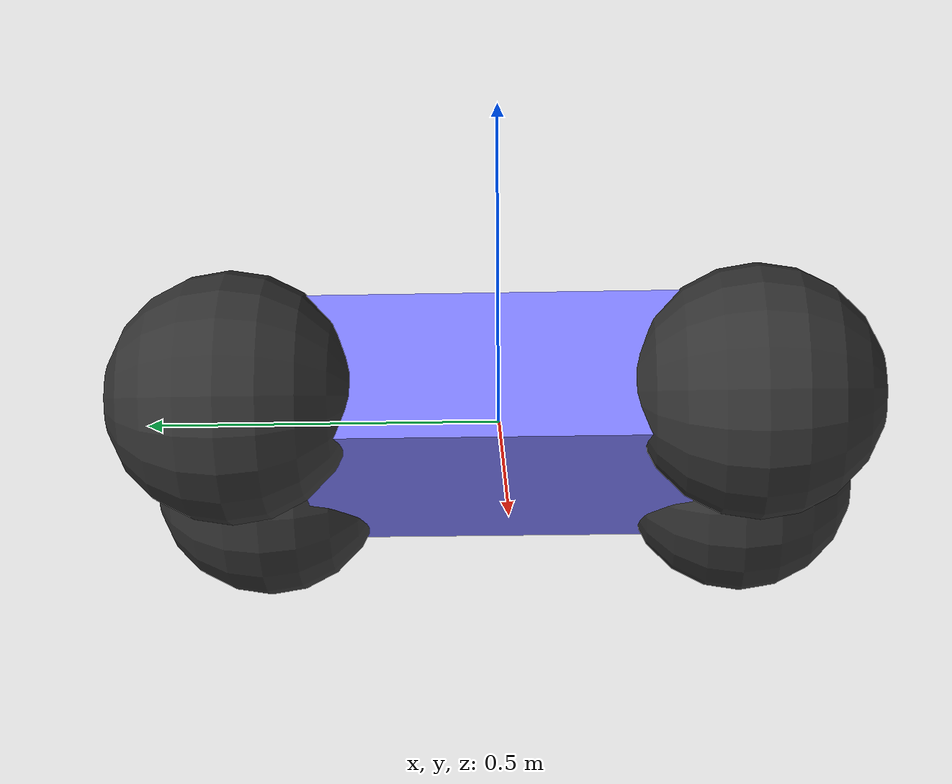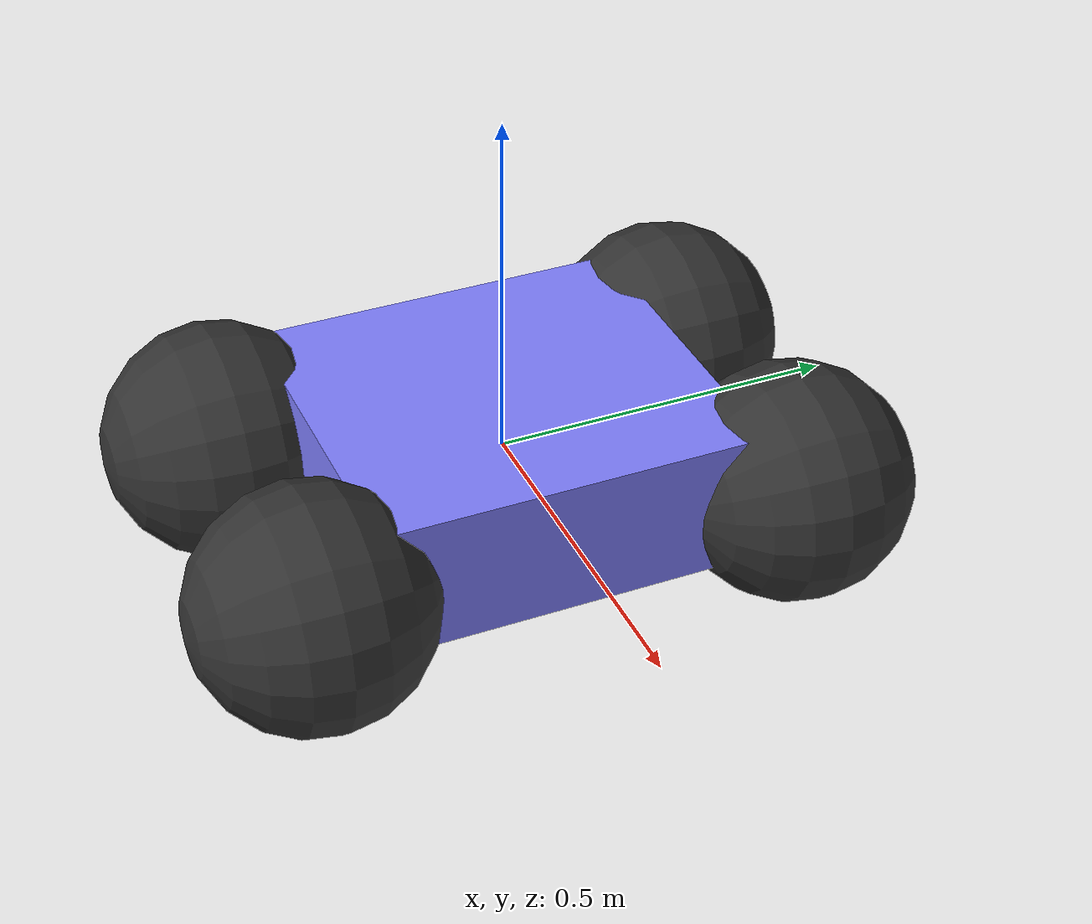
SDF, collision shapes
<?xml version="1.0" ?>
<sdf version="1.8">

    <model name='vehicle_blue' canonical_link='chassis'>
      <pose>0 0 0 0 0 0</pose>

      <link name='chassis'>
        <pose>0 0 0 0 0 0</pose>
        <inertial>
          <mass>1.14395</mass>
          <inertia>
            <ixx>0.126164</ixx>
            <ixy>0</ixy>
            <ixz>0</ixz>
            <iyy>0.416519</iyy>
            <iyz>0</iyz>
            <izz>0.481014</izz>
          </inertia>
        </inertial>
        <visual name='visual'>
          <geometry>
            <box>
              <size>0.5 0.55 0.2</size>
            </box>
          </geometry>
          <material>
            <ambient>0.5 0.5 1.0 1</ambient>
            <diffuse>0.5 0.5 1.0 1</diffuse>
            <specular>0.0 0.0 1.0 1</specular>
          </material>
        </visual>
        <collision name='collision'>
          <geometry>
            <box>
              <size>0.5 0.55 0.2</size>
            </box>
          </geometry>
        </collision>
      </link>

      <link name='front_left_wheel'>
        <pose>0.2 0.35 -0.025 -1.5707 0 0</pose>
        <inertial>
          <mass>2</mass>
          <inertia>
            <ixx>0.145833</ixx>
            <ixy>0</ixy>
            <ixz>0</ixz>
            <iyy>0.145833</iyy>
            <iyz>0</iyz>
            <izz>0.125</izz>
          </inertia>
        </inertial>
        <visual name='visual'>
          <pose>0 0 0 1.5707 0 0</pose>
          <geometry>
            <!-- scale mesh to radius == 0.3 -->
            <mesh>
              <uri>https://fuel.gazebosim.org/1.0/OpenRobotics/models/Mecanum lift/tip/files/meshes/mecanum_wheel_left.STL</uri>
              <scale>0.003 0.003 0.003</scale>
            </mesh>
          </geometry>
          <material>
            <ambient>0.2 0.2 0.2 1</ambient>
            <diffuse>0.2 0.2 0.2 1</diffuse>
            <specular>0.2 0.2 0.2 1</specular>
          </material>
        </visual>
        <collision name='collision'>
          <geometry>
            <sphere>
              <radius>0.17</radius>
            </sphere>
          </geometry>
          <surface>
            <friction>
              <ode>
                <mu>1.0</mu>
                <mu2>0.0</mu2>
                <fdir1 gz:expressed_in="chassis">1 -1 0</fdir1>
              </ode>
            </friction>
          </surface>
        </collision>
      </link>

      <link name='rear_left_wheel'>
        <pose>-0.2 0.35 -0.025 -1.5707 0 0</pose>
        <inertial>
          <mass>2</mass>
          <inertia>
            <ixx>0.145833</ixx>
            <ixy>0</ixy>
            <ixz>0</ixz>
            <iyy>0.145833</iyy>
            <iyz>0</iyz>
            <izz>0.125</izz>
          </inertia>
        </inertial>
        <visual name='visual'>
          <pose>0 0 0 1.5707 0 0</pose>
          <geometry>
            <!-- scale mesh to radius == 0.3 -->
            <mesh>
              <uri>https://fuel.gazebosim.org/1.0/OpenRobotics/models/Mecanum lift/tip/files/meshes/mecanum_wheel_right.STL</uri>
              <scale>0.003 0.003 0.003</scale>
            </mesh>
          </geometry>
          <material>
            <ambient>0.2 0.2 0.2 1</ambient>
            <diffuse>0.2 0.2 0.2 1</diffuse>
            <specular>0.2 0.2 0.2 1</specular>
          </material>
        </visual>
        <collision name='collision'>
          <geometry>
            <sphere>
              <radius>0.17</radius>
            </sphere>
          </geometry>
          <surface>
            <friction>
              <ode>
                <mu>1.0</mu>
                <mu2>0.0</mu2>
                <fdir1 gz:expressed_in="chassis">1 1 0</fdir1>
              </ode>
            </friction>
          </surface>
        </collision>
      </link>

      <link name='front_right_wheel'>
        <pose>0.2 -0.35 -0.025 -1.5707 0 0</pose>
        <inertial>
          <mass>2</mass>
          <inertia>
            <ixx>0.145833</ixx>
            <ixy>0</ixy>
            <ixz>0</ixz>
            <iyy>0.145833</iyy>
            <iyz>0</iyz>
            <izz>0.125</izz>
          </inertia>
        </inertial>
        <visual name='visual'>
          <pose>0 0 0 1.5707 0 0</pose>
          <geometry>
            <!-- scale mesh to radius == 0.3 -->
            <mesh>
              <uri>https://fuel.gazebosim.org/1.0/OpenRobotics/models/Mecanum lift/tip/files/meshes/mecanum_wheel_right.STL</uri>
              <scale>0.003 0.003 0.003</scale>
            </mesh>
          </geometry>
          <material>
            <ambient>0.2 0.2 0.2 1</ambient>
            <diffuse>0.2 0.2 0.2 1</diffuse>
            <specular>0.2 0.2 0.2 1</specular>
          </material>
        </visual>
        <collision name='collision'>
          <geometry>
            <sphere>
              <radius>0.17</radius>
            </sphere>
          </geometry>
          <surface>
            <friction>
              <ode>
                <mu>1.0</mu>
                <mu2>0.0</mu2>
                <fdir1 gz:expressed_in="chassis">1 1 0</fdir1>
              </ode>
            </friction>
          </surface>
        </collision>
      </link>

      <link name='rear_right_wheel'>
        <pose>-0.2 -0.35 -0.025 -1.5707 0 0</pose>
        <inertial>
          <mass>2</mass>
          <inertia>
            <ixx>0.145833</ixx>
            <ixy>0</ixy>
            <ixz>0</ixz>
            <iyy>0.145833</iyy>
            <iyz>0</iyz>
            <izz>0.125</izz>
          </inertia>
        </inertial>
        <visual name='visual'>
          <pose>0 0 0 1.5707 0 0</pose>
          <geometry>
            <!-- scale mesh to radius == 0.3 -->
            <mesh>
              <uri>https://fuel.gazebosim.org/1.0/OpenRobotics/models/Mecanum lift/tip/files/meshes/mecanum_wheel_left.STL</uri>
              <scale>0.003 0.003 0.003</scale>
            </mesh>
          </geometry>
          <material>
            <ambient>0.2 0.2 0.2 1</ambient>
            <diffuse>0.2 0.2 0.2 1</diffuse>
            <specular>0.2 0.2 0.2 1</specular>
          </material>
        </visual>
        <collision name='collision'>
          <geometry>
            <sphere>
              <radius>0.17</radius>
            </sphere>
          </geometry>
          <surface>
            <friction>
              <ode>
                <mu>1.0</mu>
                <mu2>0.0</mu2>
                <fdir1 gz:expressed_in="chassis">1 -1 0</fdir1>
              </ode>
            </friction>
          </surface>
        </collision>
      </link>

      <joint name='front_left_wheel_joint' type='revolute'>
        <parent>chassis</parent>
        <child>front_left_wheel</child>
        <axis>
          <xyz>0 0 1</xyz>
          <limit>
            <lower>-1.79769e+308</lower>
            <upper>1.79769e+308</upper>
          </limit>
        </axis>
      </joint>

      <joint name='front_right_wheel_joint' type='revolute'>
        <parent>chassis</parent>
        <child>front_right_wheel</child>
        <axis>
          <xyz>0 0 1</xyz>
          <limit>
            <lower>-1.79769e+308</lower>
            <upper>1.79769e+308</upper>
          </limit>
        </axis>
      </joint>

      <joint name='rear_left_wheel_joint' type='revolute'>
        <parent>chassis</parent>
        <child>rear_left_wheel</child>
        <axis>
          <xyz>0 0 1</xyz>
          <limit>
            <lower>-1.79769e+308</lower>
            <upper>1.79769e+308</upper>
          </limit>
        </axis>
      </joint>

      <joint name='rear_right_wheel_joint' type='revolute'>
        <parent>chassis</parent>
        <child>rear_right_wheel</child>
        <axis>
          <xyz>0 0 1</xyz>
          <limit>
            <lower>-1.79769e+308</lower>
            <upper>1.79769e+308</upper>
          </limit>
        </axis>
      </joint>

      <plugin
        filename="gz-sim-mecanum-drive-system"
        name="gz::sim::systems::MecanumDrive">
        <front_left_joint>front_left_wheel_joint</front_left_joint>
        <front_right_joint>front_right_wheel_joint</front_right_joint>
        <back_left_joint>rear_left_wheel_joint</back_left_joint>
        <back_right_joint>rear_right_wheel_joint</back_right_joint>
        <wheel_separation>1.25</wheel_separation>
        <wheelbase>1.511</wheelbase>
        <wheel_radius>0.3</wheel_radius>
        <min_acceleration>-5</min_acceleration>
        <max_acceleration>5</max_acceleration>
      </plugin>

    </model>

</sdf>
